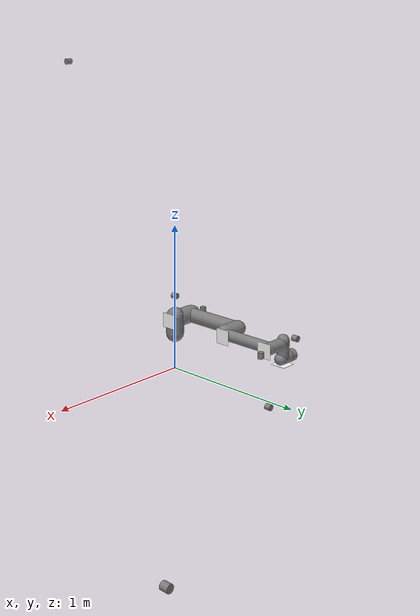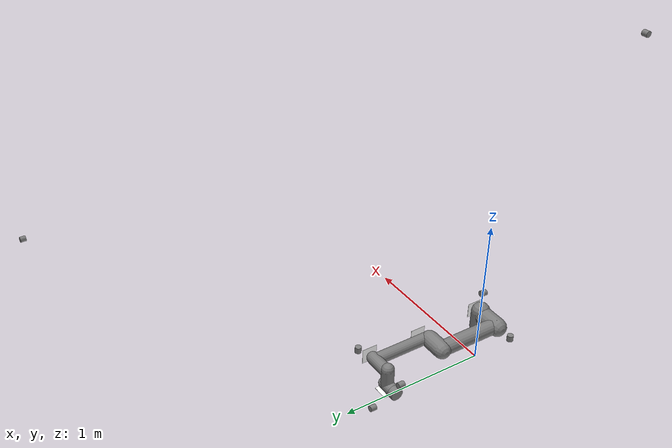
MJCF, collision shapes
<mujoco model="ur5e" root="true">
  <compiler angle="radian" meshdir="robots/its_all_a_mesh" autolimits="true"/>

  <option integrator="implicitfast"/>

  <default>
    <default class="ur5e">
      <material specular="0.5" shininess="0.25"/>
      <joint axis="0 1 0" range="-6.28319 6.28319" armature="0.1"/>
      <general gaintype="fixed" biastype="affine" ctrlrange="-6.2831 6.2831" gainprm="2000" biasprm="0 -2000 -400"
        forcerange="-150 150"/>
      <default class="size3">
        <default class="size3_limited">
          <joint range="-3.1415 3.1415"/>
          <general ctrlrange="-3.1415 3.1415"/>
        </default>
      </default>
      <default class="size1">
        <general gainprm="500" biasprm="0 -500 -100" forcerange="-28 28"/>
      </default>
      <default class="visual_arm">
        <geom type="mesh" contype="0" conaffinity="0" group="2"/>
      </default>
      <default class="collision_arm">
        <geom type="capsule" group="3"/>
        <default class="one_joint_col">
          <geom size="0.02 0.02" type="cylinder"/>
        </default>
        <default class="eef_collision">
          <geom type="cylinder"/>
        </default>
      </default>
      <site size="0.001" rgba="0.5 0.5 0.5 0.3" group="4"/>
    </default>
  </default>

  <asset>
    <material class="ur5e" name="black_2" rgba="0.033 0.033 0.033 1"/>
    <material class="ur5e" name="jointgray" rgba="0.278 0.278 0.278 1"/>
    <material class="ur5e" name="linkgray" rgba="0.82 0.82 0.82 1"/>
    <material class="ur5e" name="urblue" rgba="0.49 0.678 0.8 1"/>

    <mesh name="base_0_ur5e" file="base_0_ur5e.obj"/>
    <mesh name="base_1_ur5e" file="base_1_ur5e.obj"/>
    <mesh file="shoulder_0.obj"/>
    <mesh file="shoulder_1.obj"/>
    <mesh file="shoulder_2.obj"/>
    <mesh file="upperarm_0.obj"/>
    <mesh file="upperarm_1.obj"/>
    <mesh file="upperarm_2.obj"/>
    <mesh file="upperarm_3.obj"/>
    <mesh file="forearm_0.obj"/>
    <mesh file="forearm_1.obj"/>
    <mesh file="forearm_2.obj"/>
    <mesh file="forearm_3.obj"/>
    <mesh file="wrist1_0.obj"/>
    <mesh file="wrist1_1.obj"/>
    <mesh file="wrist1_2.obj"/>
    <mesh file="wrist2_0.obj"/>
    <mesh file="wrist2_1.obj"/>
    <mesh file="wrist2_2.obj"/>
    <mesh file="wrist3.obj"/>

    <!-- ID=0 -->
    <texture name="apriltag_texture_0" type="2d" file="tag_00.png" builtin="none"/>

    <material name="apriltag_material_0" texture="apriltag_texture_0"/>

    <!-- ID=1 -->
    <texture name="apriltag_texture_1" type="2d" file="tag_01.png" builtin="none"/>

    <material name="apriltag_material_1" texture="apriltag_texture_1"/>

    <!-- ID=2 -->
    <texture name="apriltag_texture_2" type="2d" file="tag_02.png" builtin="none"/>

    <material name="apriltag_material_2" texture="apriltag_texture_2"/>

    <!-- ID=3 -->
    <texture name="apriltag_texture_3" type="2d" file="tag_03.png" builtin="none"/>

    <material name="apriltag_material_3" texture="apriltag_texture_3"/>

  </asset>

  <worldbody>
    <light name="spotlight" mode="targetbodycom" target="wrist_2_link" pos="0 -1 2"/>
    <body name="dummy_base" childclass="ur5e" />

    <!-- Collision -->
    <geom name="joint_1" quat="1 0 1 0" pos="0 -1.04 2" class="one_joint_col"/>
    <body name="base_ur5e" pos="0 0 0.19" quat="1 0 0 1" childclass="ur5e" >

        <!-- Collision -->
        <geom name="joint_2" quat="1 0 1 0" pos="2.2 -2.3 0.19" class="one_joint_col"/>

      <inertial mass="4.0" pos="0 0 0" diaginertia="0.00443333156 0.00443333156 0.0072"/>
      <geom mesh="base_0_ur5e" material="black_2" class="visual_arm"/>
      <geom mesh="base_1_ur5e" material="jointgray" class="visual_arm"/>
      <body name="shoulder_link" pos="0 0 0.163">

        <!-- Collision -->
        <geom name="joint_3" quat="1 0 1 0" pos="0 0 0.163" class="one_joint_col"/>

        <inertial mass="3.7" pos="0 0 0" diaginertia="0.0102675 0.0102675 0.00666"/>
        <joint name="shoulder_pan_joint" class="size3" axis="0 0 1"/>
        <geom mesh="shoulder_0" material="urblue" class="visual_arm"/>
        <geom mesh="shoulder_1" material="black_2" class="visual_arm"/>
        <geom mesh="shoulder_2" material="jointgray" class="visual_arm"/>

        <geom class="collision_arm" size="0.06 0.06" pos="0 0 -0.04"/>

        <body name="upper_arm_link" pos="0 0.138 0" quat="1 0 1 0">

          <!-- Collision -->
          <geom name="joint_4" quat="1 0 1 0" pos="0 0.138 0" class="one_joint_col"/>

          <inertial mass="8.393" pos="0 0 0.2125" diaginertia="0.133886 0.133886 0.0151074"/>
          <joint name="shoulder_lift_joint" class="size3"/>

          <!-- ID=3 -->
          <geom name="shoulder_apriltag_3" type="box" pos="0 -0.20 0" quat="0.707 0.707 0 0 " size="0.05 0.05 0.001" material="apriltag_material_3" rgba="1 1 1 1" contype="0" conaffinity="0"/>

          <geom mesh="upperarm_0" material="linkgray" class="visual_arm"/>
          <geom mesh="upperarm_1" material="black_2" class="visual_arm"/>
          <geom mesh="upperarm_2" material="jointgray" class="visual_arm"/>
          <geom mesh="upperarm_3" material="urblue" class="visual_arm"/>
          <geom class="collision_arm" pos="0 -0.04 0" quat="1 1 0 0" size="0.06 0.06"/>
          <geom class="collision_arm" size="0.05 0.2" pos="0 0 0.2"/>
          <body name="forearm_link" pos="0 -0.131 0.425">

            <!-- Collision -->
            <geom name="joint_5" quat="1 0 1 0" pos="0 -0.131 0.425" class="one_joint_col"/>

            <inertial mass="2.275" pos="0 0 0.196" diaginertia="0.0311796 0.0311796 0.004095"/>
            <joint name="elbow_joint" class="size3_limited"/>
            <geom mesh="forearm_0" material="urblue" class="visual_arm"/>
            <geom mesh="forearm_1" material="linkgray" class="visual_arm"/>
            <geom mesh="forearm_2" material="black_2" class="visual_arm"/>
            <geom mesh="forearm_3" material="jointgray" class="visual_arm"/>

            <!-- ID=1 -->
            <geom name="shoulder_apriltag_1" type="box" pos="0 -0.05 0.04" quat="0.707 0.707 0 0 " size="0.05 0.05 0.001" material="apriltag_material_1" rgba="1 1 1 1" contype="0" conaffinity="0"/>

            <geom class="collision_arm" pos="0 0.08 0" quat="1 1 0 0" size="0.055 0.06"/>
            <geom class="collision_arm" size="0.038 0.19" pos="0 0 0.2"/>
            <body name="wrist_1_link" pos="0 0 0.392" quat="1 0 1 0">

              <!-- Collision -->
              <geom name="joint_6" quat="1 0 1 0" pos="0 0 0.392" class="one_joint_col"/>

              <inertial mass="1.219" pos="0 0.127 0" diaginertia="0.0025599 0.0025599 0.0021942"/>
              <joint name="wrist_1_joint" class="size1"/>
              <geom mesh="wrist1_0" material="black_2" class="visual_arm"/>

              <!-- ID=2 -->
              <geom name="shoulder_apriltag_2" type="box" pos="0 -0.06 0" quat="0.5 0.5 -0.5 0.5 " size="0.05 0.05 0.001" material="apriltag_material_2" rgba="1 1 1 1" contype="0" conaffinity="0"/>

              <geom mesh="wrist1_1" material="urblue" class="visual_arm"/>
              <geom mesh="wrist1_2" material="jointgray" class="visual_arm"/>
              <geom class="collision_arm" pos="0 0.05 0" quat="1 1 0 0" size="0.04 0.07"/>
              <body name="wrist_2_link" pos="0 0.127 0">

                <!-- Collision -->
                <geom name="joint_7" quat="1 0 1 0" pos="0 0.127 0" class="one_joint_col"/>

                <inertial mass="1.219" pos="0 0 0.1" diaginertia="0.0025599 0.0025599 0.0021942"/>
                <joint name="wrist_2_joint" axis="0 0 1" class="size1"/>
                <geom mesh="wrist2_0" material="black_2" class="visual_arm"/>
                <geom mesh="wrist2_1" material="urblue" class="visual_arm"/>
                <geom mesh="wrist2_2" material="jointgray" class="visual_arm"/>
                <geom class="collision_arm" size="0.04 0.06" pos="0 0 0.04"/>
                <geom class="collision_arm" pos="0 0.02 0.1" quat="1 1 0 0" size="0.04 0.04"/>
                <body name="wrist_3_link" pos="0 0 0.1">

                  <!-- Collision -->

                  <site name="ee_site" pos="0 0 0.1" size="0.002" rgba="1 0 0 1"/>
                  <inertial mass="0.1889" pos="0 0.0771683 0" quat="1 0 0 1"
                    diaginertia="0.000132134 9.90863e-05 9.90863e-05"/>
                  <joint name="wrist_3_joint" class="size1"/>
                  <geom material="linkgray" mesh="wrist3" class="visual_arm"/>

                  <!-- ID=0 -->
                  <geom name="shoulder_apriltag_0" type="box" pos="0 0 0.04" size="0.05 0.05 0.001" material="apriltag_material_0" rgba="1 1 1 1" contype="0" conaffinity="0"/>

                  <geom class="eef_collision" pos="0 0.08 0" quat="1 1 0 0" size="0.04 0.02"/>
                  <site name="attachment_site" pos="0 0.1 0" quat="-1 1 0 0"/>

                </body>
              </body>
            </body>
          </body>
        </body>
      </body>
    </body>
  </worldbody>

  <actuator>
    <general class="size3" name="shoulder_pan" joint="shoulder_pan_joint"   />
    <general class="size3" name="shoulder_lift" joint="shoulder_lift_joint" />
    <general class="size3_limited" name="elbow" joint="elbow_joint"         />
    <general class="size1" name="wrist_1" joint="wrist_1_joint"             />
    <general class="size1" name="wrist_2" joint="wrist_2_joint"             />
    <general class="size1" name="wrist_3" joint="wrist_3_joint"             />

  </actuator>

  <sensor>
        <velocimeter name="ee_vel" site="ee_site" />
  </sensor>

</mujoco>

<!-- gainprm="500" biasprm="0"
gainprm="500" biasprm="0"
gainprm="500" biasprm="0"
gainprm="500" biasprm="0"
gainprm="500" biasprm="0"
gainprm="500" biasprm="0" -->
